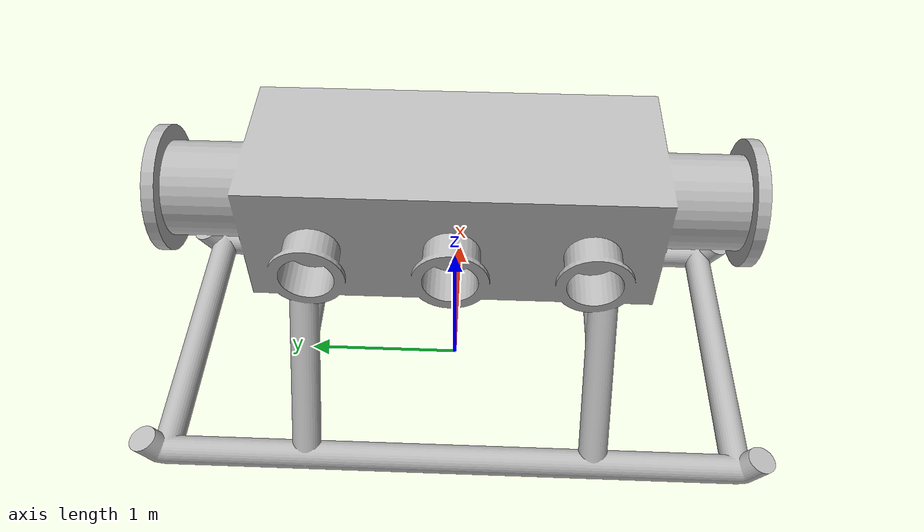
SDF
<?xml version="1.0"?>
<sdf version="1.4">
    <model name="target_box">
        <pose>0 0 0 0 0 0</pose>
        <static>true</static>
        <link name="target_box_body">
            <visual name="visual">
                <geometry>
                    <mesh>
                        <uri>model://target_box/visual.osgb</uri>
                    </mesh>
                </geometry>
            </visual>
            <collision name="collision">
                <geometry>
                    <mesh>
                        <uri>model://target_box/collision.stl</uri>
                    </mesh>
                </geometry>
            </collision>
            <inertial>
                <pose>0 0 -1 0 0 0</pose>
                <inertia>
                    <ixx>0.0</ixx>
                    <ixy>0</ixy>
                    <ixz>0.0</ixz>
                    <iyy>0.0</iyy>
                    <iyz>0</iyz>
                    <izz>0.0</izz>
                </inertia>
                <mass>1.0</mass>
            </inertial>
        </link>
    </model>
</sdf>
